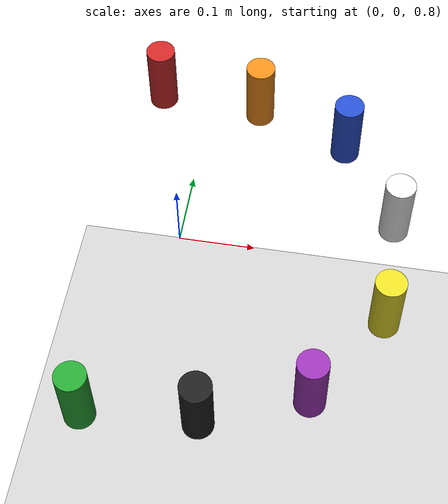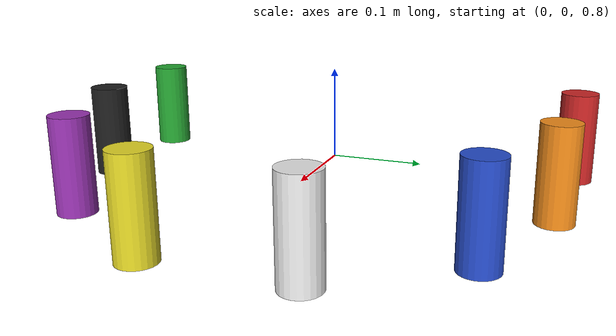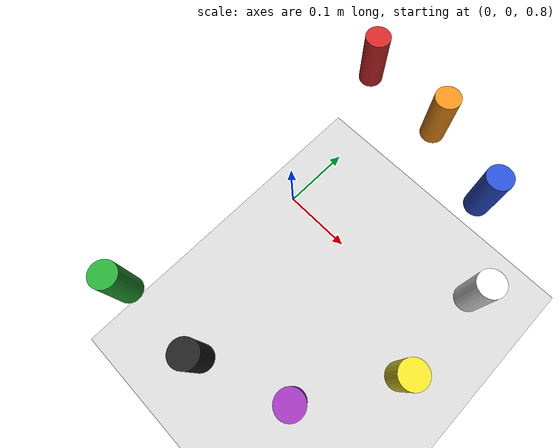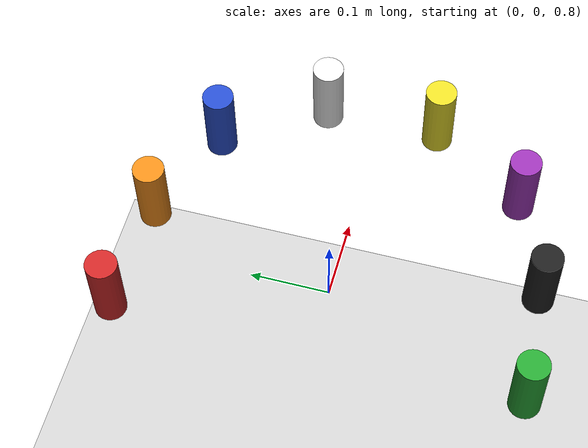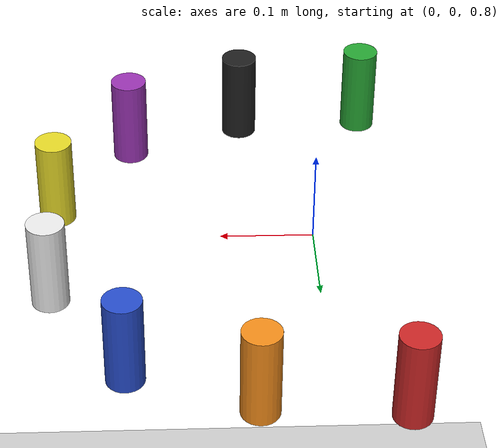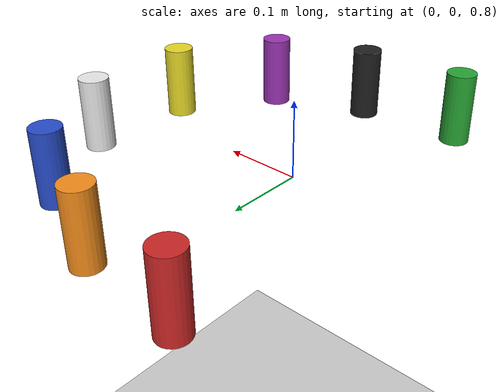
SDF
<sdf version="1.7">
 <world name="default">
  <light name="sun" type="directional">
   <pose>0 0 10 0 -0 0</pose>
   <diffuse>0.8 0.8 0.8 1</diffuse>
   <specular>0.2 0.2 0.2 1</specular>
   <attenuation>
    <range>1000</range>
    <constant>0.9</constant>
    <linear>0.01</linear>
    <quadratic>0.001</quadratic>
   </attenuation>
   <direction>-0.5 0.1 -0.9</direction>
   <spot><inner_angle>0</inner_angle><outer_angle>0</outer_angle><falloff>0</falloff></spot>
  </light>
  <model name="ground_plane">
   <static>1</static>
   <link name="link">
    <collision name="collision">
     <geometry><plane><normal>0 0 1</normal><size>100 100</size></plane></geometry>
     <surface><friction><ode><mu>100</mu><mu2>50</mu2></ode></friction></surface>
    </collision>
    <visual name="visual">
     <cast_shadows>0</cast_shadows>
     <geometry><plane><normal>0 0 1</normal><size>100 100</size></plane></geometry>
     <material>
      <script><uri>file://media/materials/scripts/gazebo.material</uri><name>Gazebo/Grey</name></script>
     </material>
    </visual>
   </link>
  </model>
  <gravity>0 0 -9.8</gravity>
  <magnetic_field>6e-06 2.3e-05 -4.2e-05</magnetic_field>
  <atmosphere type="adiabatic"/>
  <physics type="ode">
   <max_step_size>0.001</max_step_size>
   <real_time_factor>1</real_time_factor>
   <real_time_update_rate>1000</real_time_update_rate>
  </physics>
  <scene><ambient>0.4 0.4 0.4 1</ambient><background>0.7 0.7 0.7 1</background><shadows>1</shadows></scene>
  <spherical_coordinates>
   <surface_model>EARTH_WGS84</surface_model>
   <latitude_deg>0</latitude_deg>
   <longitude_deg>0</longitude_deg>
   <elevation>0</elevation>
   <heading_deg>0</heading_deg>
  </spherical_coordinates>
  <model name="white">
   <link name="link">
    <collision name="collision">
     <geometry><cylinder><radius>0.02</radius><length>0.1</length></cylinder></geometry>
     <surface>
      <friction><ode><mu>1000000.0</mu><mu2>10000.0</mu2></ode></friction>
      <contact>
       <ode><kp>1000000.0</kp><kd>100.0</kd><max_vel>1.0</max_vel><min_depth>0.002</min_depth></ode>
      </contact>
     </surface>
    </collision>
    <visual name="visual">
     <geometry><cylinder><radius>0.02</radius><length>0.1</length></cylinder></geometry>
     <material>
      <script><uri>file://media/materials/scripts/gazebo.material</uri><name>Gazebo/White</name></script>
     </material>
    </visual>
    <inertial>
     <mass>0.010</mass>
     <inertia>
      <ixx>4.7583e-005</ixx>
      <ixy>0</ixy>
      <ixz>0</ixz>
      <iyy>4.7583e-005</iyy>
      <iyz>0</iyz>
      <izz>3.1250e-006</izz>
     </inertia>
    </inertial>
   </link>
   <pose>0.28 0.075 0.826497 3.14 0 0</pose>
  </model>
  <model name="yellow">
   <link name="link">
    <collision name="collision">
     <geometry><cylinder><radius>0.02</radius><length>0.1</length></cylinder></geometry>
     <surface>
      <friction><ode><mu>1000000.0</mu><mu2>10000.0</mu2></ode></friction>
      <contact>
       <ode><kp>1000000.0</kp><kd>100.0</kd><max_vel>1.0</max_vel><min_depth>0.002</min_depth></ode>
      </contact>
     </surface>
    </collision>
    <visual name="visual">
     <geometry><cylinder><radius>0.02</radius><length>0.1</length></cylinder></geometry>
     <material>
      <script><uri>file://media/materials/scripts/gazebo.material</uri><name>Gazebo/Yellow</name></script>
     </material>
    </visual>
    <inertial>
     <mass>0.010</mass>
     <inertia>
      <ixx>4.7583e-005</ixx>
      <ixy>0</ixy>
      <ixz>0</ixz>
      <iyy>4.7583e-005</iyy>
      <iyz>0</iyz>
      <izz>3.1250e-006</izz>
     </inertia>
    </inertial>
   </link>
   <pose>0.28 -0.075 0.826497 3.14 0 0</pose>
  </model>
  <model name="blue">
   <link name="link">
    <collision name="collision">
     <geometry><cylinder><radius>0.02</radius><length>0.1</length></cylinder></geometry>
     <surface>
      <friction><ode><mu>1000000.0</mu><mu2>10000.0</mu2></ode></friction>
      <contact>
       <ode><kp>1000000.0</kp><kd>100.0</kd><max_vel>1.0</max_vel><min_depth>0.002</min_depth></ode>
      </contact>
     </surface>
    </collision>
    <visual name="visual">
     <geometry><cylinder><radius>0.02</radius><length>0.1</length></cylinder></geometry>
     <material>
      <script><uri>file://media/materials/scripts/gazebo.material</uri><name>Gazebo/Blue</name></script>
     </material>
    </visual>
    <inertial>
     <mass>0.010</mass>
     <inertia>
      <ixx>4.7583e-005</ixx>
      <ixy>0</ixy>
      <ixz>0</ixz>
      <iyy>4.7583e-005</iyy>
      <iyz>0</iyz>
      <izz>3.1250e-006</izz>
     </inertia>
    </inertial>
   </link>
   <pose>0.20 0.20 0.826499 3.14 -1e-06 -1.3e-05</pose>
  </model>
  <model name="purple">
   <link name="link">
    <collision name="collision">
     <geometry><cylinder><radius>0.02</radius><length>0.1</length></cylinder></geometry>
     <surface>
      <friction><ode><mu>1000000.0</mu><mu2>10000.0</mu2></ode></friction>
      <contact>
       <ode><kp>1000000.0</kp><kd>100.0</kd><max_vel>1.0</max_vel><min_depth>0.002</min_depth></ode>
      </contact>
     </surface>
    </collision>
    <visual name="visual">
     <geometry><cylinder><radius>0.02</radius><length>0.1</length></cylinder></geometry>
     <material>
      <script><uri>file://media/materials/scripts/gazebo.material</uri><name>Gazebo/Purple</name></script>
     </material>
    </visual>
    <inertial>
     <mass>0.010</mass>
     <inertia>
      <ixx>4.7583e-005</ixx>
      <ixy>0</ixy>
      <ixz>0</ixz>
      <iyy>4.7583e-005</iyy>
      <iyz>0</iyz>
      <izz>3.1250e-006</izz>
     </inertia>
    </inertial>
   </link>
   <pose>0.20 -0.20 0.826491 3.14 -2e-06 -0</pose>
  </model>
  <model name="black">
   <link name="link">
    <collision name="collision">
     <geometry><cylinder><radius>0.02</radius><length>0.1</length></cylinder></geometry>
     <surface>
      <friction><ode><mu>1000000.0</mu><mu2>10000.0</mu2></ode></friction>
      <contact>
       <ode><kp>1000000.0</kp><kd>100.0</kd><max_vel>1.0</max_vel><min_depth>0.002</min_depth></ode>
      </contact>
     </surface>
    </collision>
    <visual name="visual">
     <geometry><cylinder><radius>0.02</radius><length>0.1</length></cylinder></geometry>
     <material>
      <script><uri>file://media/materials/scripts/gazebo.material</uri><name>Gazebo/Black</name></script>
     </material>
    </visual>
    <inertial>
     <mass>0.010</mass>
     <inertia>
      <ixx>4.7583e-005</ixx>
      <ixy>0</ixy>
      <ixz>0</ixz>
      <iyy>4.7583e-005</iyy>
      <iyz>0</iyz>
      <izz>3.1250e-006</izz>
     </inertia>
    </inertial>
   </link>
   <pose>0.070 -0.25 0.826491 3.14 -0 -3e-06</pose>
  </model>
  <model name="green">
   <link name="link">
    <collision name="collision">
     <geometry><cylinder><radius>0.02</radius><length>0.1</length></cylinder></geometry>
     <surface>
      <friction><ode><mu>1000000.0</mu><mu2>10000.0</mu2></ode></friction>
      <contact>
       <ode><kp>1000000.0</kp><kd>100.0</kd><max_vel>1.0</max_vel><min_depth>0.002</min_depth></ode>
      </contact>
     </surface>
    </collision>
    <visual name="visual">
     <geometry><cylinder><radius>0.02</radius><length>0.1</length></cylinder></geometry>
     <material>
      <script><uri>file://media/materials/scripts/gazebo.material</uri><name>Gazebo/Green</name></script>
     </material>
    </visual>
    <inertial>
     <mass>0.010</mass>
     <inertia>
      <ixx>4.7583e-005</ixx>
      <ixy>0</ixy>
      <ixz>0</ixz>
      <iyy>4.7583e-005</iyy>
      <iyz>0</iyz>
      <izz>3.1250e-006</izz>
     </inertia>
    </inertial>
   </link>
   <pose>-0.075 -0.26 0.826491 3.14 -0 0</pose>
  </model>
  <model name="orange">
   <link name="link">
    <collision name="collision">
     <geometry><cylinder><radius>0.02</radius><length>0.1</length></cylinder></geometry>
     <surface>
      <friction><ode><mu>1000000.0</mu><mu2>10000.0</mu2></ode></friction>
      <contact>
       <ode><kp>1000000.0</kp><kd>100.0</kd><max_vel>1.0</max_vel><min_depth>0.002</min_depth></ode>
      </contact>
     </surface>
    </collision>
    <visual name="visual">
     <geometry><cylinder><radius>0.02</radius><length>0.1</length></cylinder></geometry>
     <material>
      <script><uri>file://media/materials/scripts/gazebo.material</uri><name>Gazebo/Orange</name></script>
     </material>
    </visual>
    <inertial>
     <mass>0.010</mass>
     <inertia>
      <ixx>4.7583e-005</ixx>
      <ixy>0</ixy>
      <ixz>0</ixz>
      <iyy>4.7583e-005</iyy>
      <iyz>0</iyz>
      <izz>3.1250e-006</izz>
     </inertia>
    </inertial>
   </link>
   <pose>0.070 0.25 0.826492 3.14 -1e-06 -3.7e-05</pose>
  </model>
  <model name="red">
   <link name="link">
    <collision name="collision">
     <geometry><cylinder><radius>0.02</radius><length>0.1</length></cylinder></geometry>
     <surface>
      <friction><ode><mu>1000000.0</mu><mu2>10000.0</mu2></ode></friction>
      <contact>
       <ode><kp>1000000.0</kp><kd>100.0</kd><max_vel>1.0</max_vel><min_depth>0.002</min_depth></ode>
      </contact>
     </surface>
    </collision>
    <visual name="visual">
     <geometry><cylinder><radius>0.02</radius><length>0.1</length></cylinder></geometry>
     <material>
      <script><uri>file://media/materials/scripts/gazebo.material</uri><name>Gazebo/Red</name></script>
     </material>
    </visual>
    <inertial>
     <mass>0.010</mass>
     <inertia>
      <ixx>4.7583e-005</ixx>
      <ixy>0</ixy>
      <ixz>0</ixz>
      <iyy>4.7583e-005</iyy>
      <iyz>0</iyz>
      <izz>3.1250e-006</izz>
     </inertia>
    </inertial>
   </link>
   <pose>-0.075 0.26 0.826494 3.14 -0.000188 -1e-05</pose>
  </model>
 </world>
</sdf>
